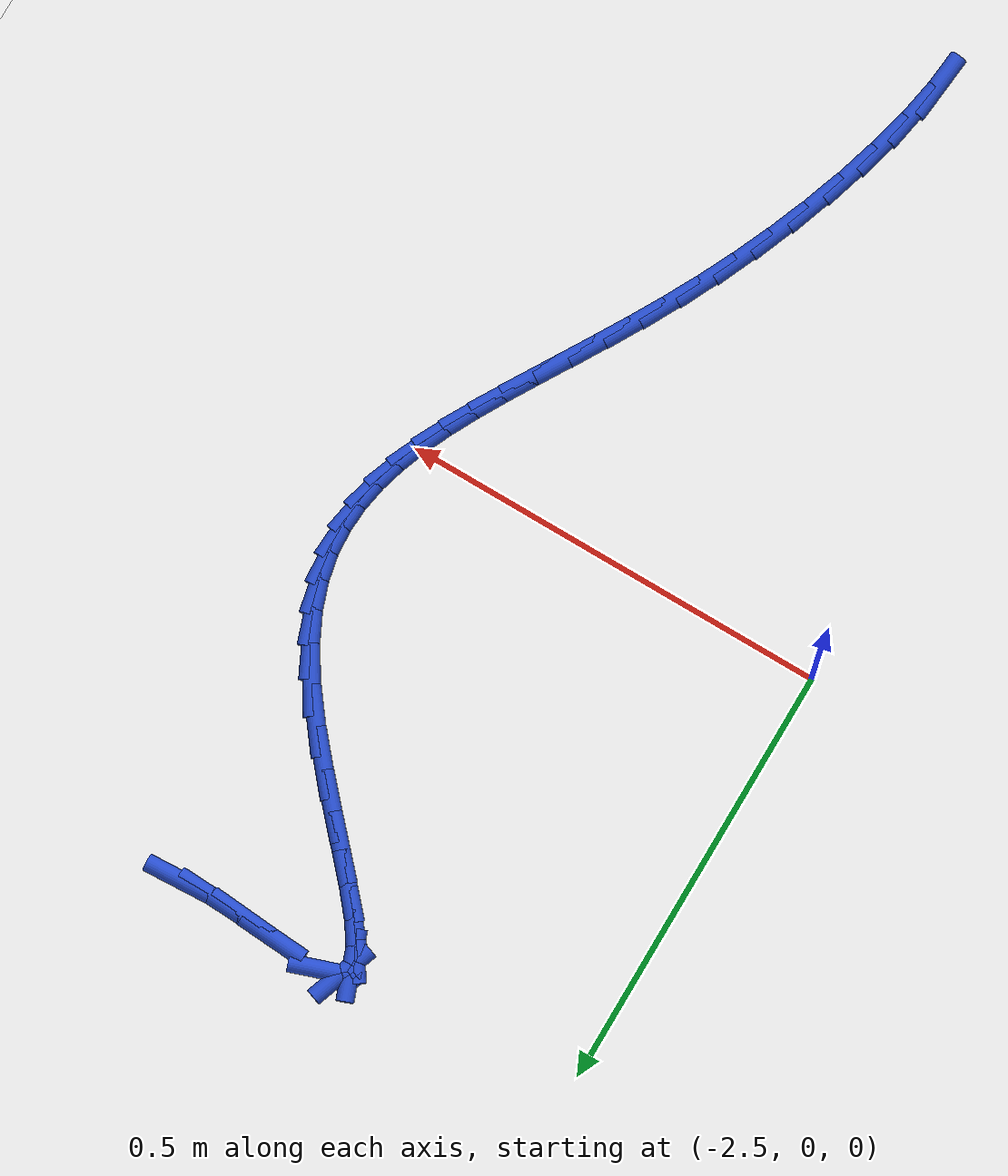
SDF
<sdf version="1.6">
 <world name="default">
  <model name="ground_plane">
   <static>1</static>
   <link name="link">
    <collision name="collision">
     <geometry><plane><normal>0 0 1</normal><size>100 100</size></plane></geometry>
     <surface><friction><ode><mu>100</mu><mu2>50</mu2></ode></friction></surface>
    </collision>
    <visual name="visual">
     <cast_shadows>0</cast_shadows>
     <geometry><plane><normal>0 0 1</normal><size>100 100</size></plane></geometry>
     <material>
      <script><uri>file://media/materials/scripts/gazebo.material</uri><name>Gazebo/WhiteGlow</name></script>
     </material>
    </visual>
   </link>
  </model>
  <model name="line">
   <link name="link_98">
    <pose>-2.0222321061903066 0.5343079483887585 0.01 0 1.57 0.050211833476726926</pose>
    <collision name="collision">
     <geometry><cylinder><radius>0.01</radius><length>0.08</length></cylinder></geometry>
    </collision>
    <visual name="visual">
     <material>
      <script><name>Gazebo/Blue</name><uri>file://media/materials/scripts/gazebo.material</uri></script>
     </material>
     <geometry><cylinder><radius>0.01</radius><length>0.08</length></cylinder></geometry>
    </visual>
   </link>
   <link name="link_99">
    <pose>-2.0597226428694095 0.5324238961626595 0.01 0 1.57 -0.04555569203650313</pose>
    <collision name="collision">
     <geometry><cylinder><radius>0.01</radius><length>0.08</length></cylinder></geometry>
    </collision>
    <visual name="visual">
     <material>
      <script><name>Gazebo/Blue</name><uri>file://media/materials/scripts/gazebo.material</uri></script>
     </material>
     <geometry><cylinder><radius>0.01</radius><length>0.08</length></cylinder></geometry>
    </visual>
   </link>
   <link name="link_100">
    <pose>-2.1006573011702905 0.5342899939458274 0.01 0 1.57 -0.08130797092445677</pose>
    <collision name="collision">
     <geometry><cylinder><radius>0.01</radius><length>0.08</length></cylinder></geometry>
    </collision>
    <visual name="visual">
     <material>
      <script><name>Gazebo/Blue</name><uri>file://media/materials/scripts/gazebo.material</uri></script>
     </material>
     <geometry><cylinder><radius>0.01</radius><length>0.08</length></cylinder></geometry>
    </visual>
   </link>
   <link name="link_101">
    <pose>-2.141348541899856 0.5376058263604369 0.01 0 1.57 -0.06695993671499163</pose>
    <collision name="collision">
     <geometry><cylinder><radius>0.01</radius><length>0.08</length></cylinder></geometry>
    </collision>
    <visual name="visual">
     <material>
      <script><name>Gazebo/Blue</name><uri>file://media/materials/scripts/gazebo.material</uri></script>
     </material>
     <geometry><cylinder><radius>0.01</radius><length>0.08</length></cylinder></geometry>
    </visual>
   </link>
   <link name="link_103">
    <pose>-2.207250613872679 0.5393850335726786 0.01 0 1.57 0.33092880955815523</pose>
    <collision name="collision">
     <geometry><cylinder><radius>0.01</radius><length>0.08</length></cylinder></geometry>
    </collision>
    <visual name="visual">
     <material>
      <script><name>Gazebo/Blue</name><uri>file://media/materials/scripts/gazebo.material</uri></script>
     </material>
     <geometry><cylinder><radius>0.01</radius><length>0.08</length></cylinder></geometry>
    </visual>
   </link>
   <link name="link_104">
    <pose>-2.2250972439251266 0.5332535921931708 0.01 0 1.57 1.2271412205592238</pose>
    <collision name="collision">
     <geometry><cylinder><radius>0.01</radius><length>0.08</length></cylinder></geometry>
    </collision>
    <visual name="visual">
     <material>
      <script><name>Gazebo/Blue</name><uri>file://media/materials/scripts/gazebo.material</uri></script>
     </material>
     <geometry><cylinder><radius>0.01</radius><length>0.08</length></cylinder></geometry>
    </visual>
   </link>
   <link name="link_105">
    <pose>-2.2297160677361085 0.5203466108167064 0.01 0 1.57 -1.2225862500264042</pose>
    <collision name="collision">
     <geometry><cylinder><radius>0.01</radius><length>0.08</length></cylinder></geometry>
    </collision>
    <visual name="visual">
     <material>
      <script><name>Gazebo/Blue</name><uri>file://media/materials/scripts/gazebo.material</uri></script>
     </material>
     <geometry><cylinder><radius>0.01</radius><length>0.08</length></cylinder></geometry>
    </visual>
   </link>
   <link name="link_106">
    <pose>-2.22282028139576 0.5013500271896137 0.01 0 1.57 -0.9787455630980134</pose>
    <collision name="collision">
     <geometry><cylinder><radius>0.01</radius><length>0.08</length></cylinder></geometry>
    </collision>
    <visual name="visual">
     <material>
      <script><name>Gazebo/Blue</name><uri>file://media/materials/scripts/gazebo.material</uri></script>
     </material>
     <geometry><cylinder><radius>0.01</radius><length>0.08</length></cylinder></geometry>
    </visual>
   </link>
   <link name="link_107">
    <pose>-2.2065804835024925 0.47720270117677743 0.01 0 1.57 -0.8806425585426093</pose>
    <collision name="collision">
     <geometry><cylinder><radius>0.01</radius><length>0.08</length></cylinder></geometry>
    </collision>
    <visual name="visual">
     <material>
      <script><name>Gazebo/Blue</name><uri>file://media/materials/scripts/gazebo.material</uri></script>
     </material>
     <geometry><cylinder><radius>0.01</radius><length>0.08</length></cylinder></geometry>
    </visual>
   </link>
   <link name="link_108">
    <pose>-2.1831672726547176 0.4488434926430814 0.01 0 1.57 -0.8389073909016722</pose>
    <collision name="collision">
     <geometry><cylinder><radius>0.01</radius><length>0.08</length></cylinder></geometry>
    </collision>
    <visual name="visual">
     <material>
      <script><name>Gazebo/Blue</name><uri>file://media/materials/scripts/gazebo.material</uri></script>
     </material>
     <geometry><cylinder><radius>0.01</radius><length>0.08</length></cylinder></geometry>
    </visual>
   </link>
   <link name="link_109">
    <pose>-2.1547512474508497 0.4172112614534111 0.01 0 1.57 -0.82705416039861</pose>
    <collision name="collision">
     <geometry><cylinder><radius>0.01</radius><length>0.08</length></cylinder></geometry>
    </collision>
    <visual name="visual">
     <material>
      <script><name>Gazebo/Blue</name><uri>file://media/materials/scripts/gazebo.material</uri></script>
     </material>
     <geometry><cylinder><radius>0.01</radius><length>0.08</length></cylinder></geometry>
    </visual>
   </link>
   <link name="link_110">
    <pose>-2.1235030064892997 0.3832448674726504 0.01 0 1.57 -0.8366652121062161</pose>
    <collision name="collision">
     <geometry><cylinder><radius>0.01</radius><length>0.08</length></cylinder></geometry>
    </collision>
    <visual name="visual">
     <material>
      <script><name>Gazebo/Blue</name><uri>file://media/materials/scripts/gazebo.material</uri></script>
     </material>
     <geometry><cylinder><radius>0.01</radius><length>0.08</length></cylinder></geometry>
    </visual>
   </link>
   <link name="link_111">
    <pose>-2.0915931483684793 0.34788317056568385 0.01 0 1.57 -0.8670246610117589</pose>
    <collision name="collision">
     <geometry><cylinder><radius>0.01</radius><length>0.08</length></cylinder></geometry>
    </collision>
    <visual name="visual">
     <material>
      <script><name>Gazebo/Blue</name><uri>file://media/materials/scripts/gazebo.material</uri></script>
     </material>
     <geometry><cylinder><radius>0.01</radius><length>0.08</length></cylinder></geometry>
    </visual>
   </link>
   <link name="link_112">
    <pose>-2.0611922716868016 0.3120650305973953 0.01 0 1.57 -0.9233305796120584</pose>
    <collision name="collision">
     <geometry><cylinder><radius>0.01</radius><length>0.08</length></cylinder></geometry>
    </collision>
    <visual name="visual">
     <material>
      <script><name>Gazebo/Blue</name><uri>file://media/materials/scripts/gazebo.material</uri></script>
     </material>
     <geometry><cylinder><radius>0.01</radius><length>0.08</length></cylinder></geometry>
    </visual>
   </link>
   <link name="link_113">
    <pose>-2.0344709060041555 0.276729276423202 0.01 0 1.57 -1.011573168788963</pose>
    <collision name="collision">
     <geometry><cylinder><radius>0.01</radius><length>0.08</length></cylinder></geometry>
    </collision>
    <visual name="visual">
     <material>
      <script><name>Gazebo/Blue</name><uri>file://media/materials/scripts/gazebo.material</uri></script>
     </material>
     <geometry><cylinder><radius>0.01</radius><length>0.08</length></cylinder></geometry>
    </visual>
   </link>
   <link name="link_114">
    <pose>-2.0131061835406148 0.24259312165650496 0.01 0 1.57 -1.1188501569619445</pose>
    <collision name="collision">
     <geometry><cylinder><radius>0.01</radius><length>0.08</length></cylinder></geometry>
    </collision>
    <visual name="visual">
     <material>
      <script><name>Gazebo/Blue</name><uri>file://media/materials/scripts/gazebo.material</uri></script>
     </material>
     <geometry><cylinder><radius>0.01</radius><length>0.08</length></cylinder></geometry>
    </visual>
   </link>
   <link name="link_115">
    <pose>-1.9970997120923155 0.2096211983283774 0.01 0 1.57 -1.2396714154995376</pose>
    <collision name="collision">
     <geometry><cylinder><radius>0.01</radius><length>0.08</length></cylinder></geometry>
    </collision>
    <visual name="visual">
     <material>
      <script><name>Gazebo/Blue</name><uri>file://media/materials/scripts/gazebo.material</uri></script>
     </material>
     <geometry><cylinder><radius>0.01</radius><length>0.08</length></cylinder></geometry>
    </visual>
   </link>
   <link name="link_116">
    <pose>-1.986097765018199 0.1776185358110622 0.01 0 1.57 -1.370155258010546</pose>
    <collision name="collision">
     <geometry><cylinder><radius>0.01</radius><length>0.08</length></cylinder></geometry>
    </collision>
    <visual name="visual">
     <material>
      <script><name>Gazebo/Blue</name><uri>file://media/materials/scripts/gazebo.material</uri></script>
     </material>
     <geometry><cylinder><radius>0.01</radius><length>0.08</length></cylinder></geometry>
    </visual>
   </link>
   <link name="link_117">
    <pose>-1.9797466156772068 0.14639016347680078 0.01 0 1.57 -1.5038770921991265</pose>
    <collision name="collision">
     <geometry><cylinder><radius>0.01</radius><length>0.08</length></cylinder></geometry>
    </collision>
    <visual name="visual">
     <material>
      <script><name>Gazebo/Blue</name><uri>file://media/materials/scripts/gazebo.material</uri></script>
     </material>
     <geometry><cylinder><radius>0.01</radius><length>0.08</length></cylinder></geometry>
    </visual>
   </link>
   <link name="link_118">
    <pose>-1.9776925374282797 0.11574111069783503 0.01 0 1.57 1.5084524865155196</pose>
    <collision name="collision">
     <geometry><cylinder><radius>0.01</radius><length>0.08</length></cylinder></geometry>
    </collision>
    <visual name="visual">
     <material>
      <script><name>Gazebo/Blue</name><uri>file://media/materials/scripts/gazebo.material</uri></script>
     </material>
     <geometry><cylinder><radius>0.01</radius><length>0.08</length></cylinder></geometry>
    </visual>
   </link>
   <link name="link_119">
    <pose>-1.97958180363036 0.08547640684640649 0.01 0 1.57 1.3906002942337556</pose>
    <collision name="collision">
     <geometry><cylinder><radius>0.01</radius><length>0.08</length></cylinder></geometry>
    </collision>
    <visual name="visual">
     <material>
      <script><name>Gazebo/Blue</name><uri>file://media/materials/scripts/gazebo.material</uri></script>
     </material>
     <geometry><cylinder><radius>0.01</radius><length>0.08</length></cylinder></geometry>
    </visual>
   </link>
   <link name="link_120">
    <pose>-1.9850606876423893 0.055401081294757897 0.01 0 1.57 1.2888054329643657</pose>
    <collision name="collision">
     <geometry><cylinder><radius>0.01</radius><length>0.08</length></cylinder></geometry>
    </collision>
    <visual name="visual">
     <material>
      <script><name>Gazebo/Blue</name><uri>file://media/materials/scripts/gazebo.material</uri></script>
     </material>
     <geometry><cylinder><radius>0.01</radius><length>0.08</length></cylinder></geometry>
    </visual>
   </link>
   <link name="link_121">
    <pose>-1.9937754628233084 0.025320163415130617 0.01 0 1.57 1.20505545254791</pose>
    <collision name="collision">
     <geometry><cylinder><radius>0.01</radius><length>0.08</length></cylinder></geometry>
    </collision>
    <visual name="visual">
     <material>
      <script><name>Gazebo/Blue</name><uri>file://media/materials/scripts/gazebo.material</uri></script>
     </material>
     <geometry><cylinder><radius>0.01</radius><length>0.08</length></cylinder></geometry>
    </visual>
   </link>
   <link name="link_122">
    <pose>-2.005372402532059 -0.004961317420233313 0.01 0 1.57 1.139282304859191</pose>
    <collision name="collision">
     <geometry><cylinder><radius>0.01</radius><length>0.08</length></cylinder></geometry>
    </collision>
    <visual name="visual">
     <material>
      <script><name>Gazebo/Blue</name><uri>file://media/materials/scripts/gazebo.material</uri></script>
     </material>
     <geometry><cylinder><radius>0.01</radius><length>0.08</length></cylinder></geometry>
    </visual>
   </link>
   <link name="link_123">
    <pose>-2.019497780127583 -0.03563833183909207 0.01 0 1.57 1.0902459461408651</pose>
    <collision name="collision">
     <geometry><cylinder><radius>0.01</radius><length>0.08</length></cylinder></geometry>
    </collision>
    <visual name="visual">
     <material>
      <script><name>Gazebo/Blue</name><uri>file://media/materials/scripts/gazebo.material</uri></script>
     </material>
     <geometry><cylinder><radius>0.01</radius><length>0.08</length></cylinder></geometry>
    </visual>
   </link>
   <link name="link_124">
    <pose>-2.035797868968822 -0.06690585046920372 0.01 0 1.57 1.0562465609551452</pose>
    <collision name="collision">
     <geometry><cylinder><radius>0.01</radius><length>0.08</length></cylinder></geometry>
    </collision>
    <visual name="visual">
     <material>
      <script><name>Gazebo/Blue</name><uri>file://media/materials/scripts/gazebo.material</uri></script>
     </material>
     <geometry><cylinder><radius>0.01</radius><length>0.08</length></cylinder></geometry>
    </visual>
   </link>
   <link name="link_125">
    <pose>-2.0539189424147173 -0.09895884393832724 0.01 0 1.57 1.0355509349282706</pose>
    <collision name="collision">
     <geometry><cylinder><radius>0.01</radius><length>0.08</length></cylinder></geometry>
    </collision>
    <visual name="visual">
     <material>
      <script><name>Gazebo/Blue</name><uri>file://media/materials/scripts/gazebo.material</uri></script>
     </material>
     <geometry><cylinder><radius>0.01</radius><length>0.08</length></cylinder></geometry>
    </visual>
   </link>
   <link name="link_126">
    <pose>-2.07350727382421 -0.13199228287421902 0.01 0 1.57 1.0265906593864178</pose>
    <collision name="collision">
     <geometry><cylinder><radius>0.01</radius><length>0.08</length></cylinder></geometry>
    </collision>
    <visual name="visual">
     <material>
      <script><name>Gazebo/Blue</name><uri>file://media/materials/scripts/gazebo.material</uri></script>
     </material>
     <geometry><cylinder><radius>0.01</radius><length>0.08</length></cylinder></geometry>
    </visual>
   </link>
   <link name="link_127">
    <pose>-2.094209136556242 -0.16620113790463797 0.01 0 1.57 1.028021667607654</pose>
    <collision name="collision">
     <geometry><cylinder><radius>0.01</radius><length>0.08</length></cylinder></geometry>
    </collision>
    <visual name="visual">
     <material>
      <script><name>Gazebo/Blue</name><uri>file://media/materials/scripts/gazebo.material</uri></script>
     </material>
     <geometry><cylinder><radius>0.01</radius><length>0.08</length></cylinder></geometry>
    </visual>
   </link>
   <link name="link_128">
    <pose>-2.1156708039697554 -0.20178037965734227 0.01 0 1.57 1.0387126914129479</pose>
    <collision name="collision">
     <geometry><cylinder><radius>0.01</radius><length>0.08</length></cylinder></geometry>
    </collision>
    <visual name="visual">
     <material>
      <script><name>Gazebo/Blue</name><uri>file://media/materials/scripts/gazebo.material</uri></script>
     </material>
     <geometry><cylinder><radius>0.01</radius><length>0.08</length></cylinder></geometry>
    </visual>
   </link>
   <link name="link_129">
    <pose>-2.13753854942369 -0.23892497876008992 0.01 0 1.57 1.057702750596362</pose>
    <collision name="collision">
     <geometry><cylinder><radius>0.01</radius><length>0.08</length></cylinder></geometry>
    </collision>
    <visual name="visual">
     <material>
      <script><name>Gazebo/Blue</name><uri>file://media/materials/scripts/gazebo.material</uri></script>
     </material>
     <geometry><cylinder><radius>0.01</radius><length>0.08</length></cylinder></geometry>
    </visual>
   </link>
   <link name="link_130">
    <pose>-2.1594586462769882 -0.27782990584063905 0.01 0 1.57 1.0841487433224002</pose>
    <collision name="collision">
     <geometry><cylinder><radius>0.01</radius><length>0.08</length></cylinder></geometry>
    </collision>
    <visual name="visual">
     <material>
      <script><name>Gazebo/Blue</name><uri>file://media/materials/scripts/gazebo.material</uri></script>
     </material>
     <geometry><cylinder><radius>0.01</radius><length>0.08</length></cylinder></geometry>
    </visual>
   </link>
   <link name="link_131">
    <pose>-2.181077367888592 -0.31869013152674774 0.01 0 1.57 1.117265813266629</pose>
    <collision name="collision">
     <geometry><cylinder><radius>0.01</radius><length>0.08</length></cylinder></geometry>
    </collision>
    <visual name="visual">
     <material>
      <script><name>Gazebo/Blue</name><uri>file://media/materials/scripts/gazebo.material</uri></script>
     </material>
     <geometry><cylinder><radius>0.01</radius><length>0.08</length></cylinder></geometry>
    </visual>
   </link>
   <link name="link_132">
    <pose>-2.202040873680242 -0.3616995302147877 0.01 0 1.57 1.154455870545464</pose>
    <collision name="collision">
     <geometry><cylinder><radius>0.01</radius><length>0.08</length></cylinder></geometry>
    </collision>
    <visual name="visual">
     <material>
      <script><name>Gazebo/Blue</name><uri>file://media/materials/scripts/gazebo.material</uri></script>
     </material>
     <geometry><cylinder><radius>0.01</radius><length>0.08</length></cylinder></geometry>
    </visual>
   </link>
   <link name="link_133">
    <pose>-2.2219646072618624 -0.4067564482681402 0.01 0 1.57 1.1920858337775488</pose>
    <collision name="collision">
     <geometry><cylinder><radius>0.01</radius><length>0.08</length></cylinder></geometry>
    </collision>
    <visual name="visual">
     <material>
      <script><name>Gazebo/Blue</name><uri>file://media/materials/scripts/gazebo.material</uri></script>
     </material>
     <geometry><cylinder><radius>0.01</radius><length>0.08</length></cylinder></geometry>
    </visual>
   </link>
   <link name="link_134">
    <pose>-2.2403919386705096 -0.4530657859075429 0.01 0 1.57 1.2316340818287375</pose>
    <collision name="collision">
     <geometry><cylinder><radius>0.01</radius><length>0.08</length></cylinder></geometry>
    </collision>
    <visual name="visual">
     <material>
      <script><name>Gazebo/Blue</name><uri>file://media/materials/scripts/gazebo.material</uri></script>
     </material>
     <geometry><cylinder><radius>0.01</radius><length>0.08</length></cylinder></geometry>
    </visual>
   </link>
   <link name="link_135">
    <pose>-2.2568559121525653 -0.4997330951540232 0.01 0 1.57 1.2754776853098964</pose>
    <collision name="collision">
     <geometry><cylinder><radius>0.01</radius><length>0.08</length></cylinder></geometry>
    </collision>
    <visual name="visual">
     <material>
      <script><name>Gazebo/Blue</name><uri>file://media/materials/scripts/gazebo.material</uri></script>
     </material>
     <geometry><cylinder><radius>0.01</radius><length>0.08</length></cylinder></geometry>
    </visual>
   </link>
   <link name="link_136">
    <pose>-2.2708895719544144 -0.545863928028609 0.01 0 1.57 1.3266302900146425</pose>
    <collision name="collision">
     <geometry><cylinder><radius>0.01</radius><length>0.08</length></cylinder></geometry>
    </collision>
    <visual name="visual">
     <material>
      <script><name>Gazebo/Blue</name><uri>file://media/materials/scripts/gazebo.material</uri></script>
     </material>
     <geometry><cylinder><radius>0.01</radius><length>0.08</length></cylinder></geometry>
    </visual>
   </link>
   <link name="link_137">
    <pose>-2.282025962322438 -0.5905638365523277 0.01 0 1.57 1.389396637850115</pose>
    <collision name="collision">
     <geometry><cylinder><radius>0.01</radius><length>0.08</length></cylinder></geometry>
    </collision>
    <visual name="visual">
     <material>
      <script><name>Gazebo/Blue</name><uri>file://media/materials/scripts/gazebo.material</uri></script>
     </material>
     <geometry><cylinder><radius>0.01</radius><length>0.08</length></cylinder></geometry>
    </visual>
   </link>
   <link name="link_138">
    <pose>-2.2897981275030195 -0.6329383727462065 0.01 0 1.57 1.470482581703036</pose>
    <collision name="collision">
     <geometry><cylinder><radius>0.01</radius><length>0.08</length></cylinder></geometry>
    </collision>
    <visual name="visual">
     <material>
      <script><name>Gazebo/Blue</name><uri>file://media/materials/scripts/gazebo.material</uri></script>
     </material>
     <geometry><cylinder><radius>0.01</radius><length>0.08</length></cylinder></geometry>
    </visual>
   </link>
  </model>
 </world>
</sdf>
